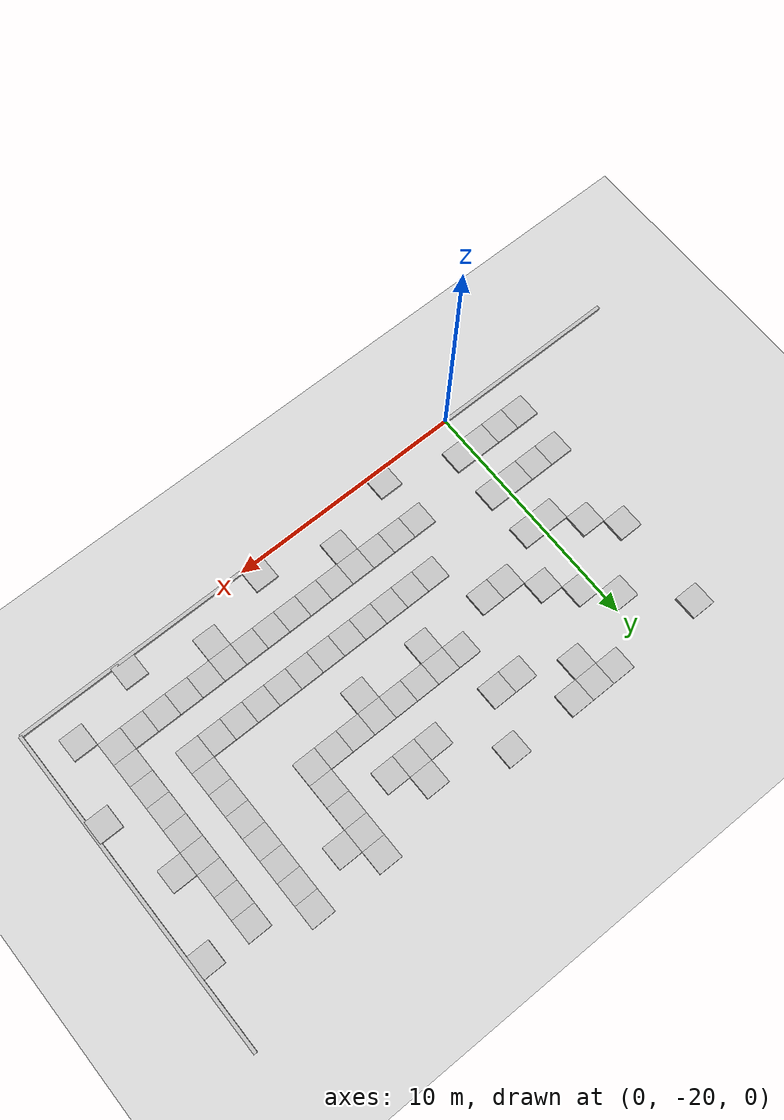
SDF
<sdf version="1.7">
 <world name="default">
  <model name="ground_plane">
   <static>1</static>
   <link name="link">
    <collision name="collision">
     <geometry><plane><normal>0 0 1</normal><size>100 100</size></plane></geometry>
     <surface>
      <contact><collide_bitmask>65535</collide_bitmask></contact>
      <friction><ode><mu>100</mu><mu2>50</mu2></ode></friction>
     </surface>
    </collision>
    <visual name="visual">
     <cast_shadows>0</cast_shadows>
     <geometry><plane><normal>0 0 1</normal><size>100 100</size></plane></geometry>
     <material>
      <script><uri>file://media/materials/scripts/gazebo.material</uri><name>Gazebo/Grey</name></script>
     </material>
    </visual>
   </link>
  </model>
  <model name="concrete_barrier_14m_0">
   <static>1</static>
   <link name="link">
    <collision name="concrete_barrier_14m_01">
     <pose>-0 0 0.3 0 -0 0</pose>
     <geometry><box><size>14 0.15 0.6</size></box></geometry>
    </collision>
    <visual name="concrete_barrier_14m_visual">
     <geometry><mesh><uri>model://concrete_barrier_14m/meshes/concrete_barrier_14m.dae</uri></mesh></geometry>
    </visual>
   </link>
   <pose>20 -13 0 0 -0 0</pose>
  </model>
  <model name="concrete_cube_1m_82">
   <static>1</static>
   <link name="link">
    <collision name="concrete_cube_1m">
     <pose>-0 0 0.3 0 -0 0</pose>
     <geometry><box><size>1 1 0.6</size></box></geometry>
    </collision>
    <visual name="concrete_cube_1m_visual">
     <geometry><mesh><uri>model://concrete_cube_1m/meshes/concrete_cube_1m.dae</uri></mesh></geometry>
    </visual>
   </link>
   <pose>2.5 -8.5 0 0 -0 0</pose>
  </model>
  <model name="concrete_cube_1m_83">
   <static>1</static>
   <link name="link">
    <collision name="concrete_cube_1m">
     <pose>-0 0 0.3 0 -0 0</pose>
     <geometry><box><size>1 1 0.6</size></box></geometry>
    </collision>
    <visual name="concrete_cube_1m_visual">
     <geometry><mesh><uri>model://concrete_cube_1m/meshes/concrete_cube_1m.dae</uri></mesh></geometry>
    </visual>
   </link>
   <pose>3.5 -8.5 0 0 -0 0</pose>
  </model>
  <model name="concrete_cube_1m_91">
   <static>1</static>
   <link name="link">
    <collision name="concrete_cube_1m">
     <pose>-0 0 0.3 0 -0 0</pose>
     <geometry><box><size>1 1 0.6</size></box></geometry>
    </collision>
    <visual name="concrete_cube_1m_visual">
     <geometry><mesh><uri>model://concrete_cube_1m/meshes/concrete_cube_1m.dae</uri></mesh></geometry>
    </visual>
   </link>
   <pose>-2.5 -8.5 0 0 -0 0</pose>
  </model>
  <model name="concrete_cube_1m_104">
   <static>1</static>
   <link name="link">
    <collision name="concrete_cube_1m">
     <pose>-0 0 0.3 0 -0 0</pose>
     <geometry><box><size>1 1 0.6</size></box></geometry>
    </collision>
    <visual name="concrete_cube_1m_visual">
     <geometry><mesh><uri>model://concrete_cube_1m/meshes/concrete_cube_1m.dae</uri></mesh></geometry>
    </visual>
   </link>
   <pose>6.5 -8.5 0 0 -0 0</pose>
  </model>
  <model name="concrete_cube_1m_106">
   <static>1</static>
   <link name="link">
    <collision name="concrete_cube_1m">
     <pose>-0 0 0.3 0 -0 0</pose>
     <geometry><box><size>1 1 0.6</size></box></geometry>
    </collision>
    <visual name="concrete_cube_1m_visual">
     <geometry><mesh><uri>model://concrete_cube_1m/meshes/concrete_cube_1m.dae</uri></mesh></geometry>
    </visual>
   </link>
   <pose>9.5 -9.5 0 0 -0 0</pose>
  </model>
  <model name="concrete_cube_1m_107">
   <static>1</static>
   <link name="link">
    <collision name="concrete_cube_1m">
     <pose>-0 0 0.3 0 -0 0</pose>
     <geometry><box><size>1 1 0.6</size></box></geometry>
    </collision>
    <visual name="concrete_cube_1m_visual">
     <geometry><mesh><uri>model://concrete_cube_1m/meshes/concrete_cube_1m.dae</uri></mesh></geometry>
    </visual>
   </link>
   <pose>0.5 -14.5 0 0 -0 0</pose>
  </model>
  <model name="concrete_cube_1m_108">
   <static>1</static>
   <link name="link">
    <collision name="concrete_cube_1m">
     <pose>-0 0 0.3 0 -0 0</pose>
     <geometry><box><size>1 1 0.6</size></box></geometry>
    </collision>
    <visual name="concrete_cube_1m_visual">
     <geometry><mesh><uri>model://concrete_cube_1m/meshes/concrete_cube_1m.dae</uri></mesh></geometry>
    </visual>
   </link>
   <pose>-0.5 -14.5 0 0 -0 0</pose>
  </model>
  <model name="concrete_cube_1m_192">
   <static>1</static>
   <link name="link">
    <collision name="concrete_cube_1m">
     <pose>-0 0 0.3 0 -0 0</pose>
     <geometry><box><size>1 1 0.6</size></box></geometry>
    </collision>
    <visual name="concrete_cube_1m_visual">
     <geometry><mesh><uri>model://concrete_cube_1m/meshes/concrete_cube_1m.dae</uri></mesh></geometry>
    </visual>
   </link>
   <pose>-1.5 -13.5 0 0 -0 0</pose>
  </model>
  <model name="concrete_cube_1m_193">
   <static>1</static>
   <link name="link">
    <collision name="concrete_cube_1m">
     <pose>-0 0 0.3 0 -0 0</pose>
     <geometry><box><size>1 1 0.6</size></box></geometry>
    </collision>
    <visual name="concrete_cube_1m_visual">
     <geometry><mesh><uri>model://concrete_cube_1m/meshes/concrete_cube_1m.dae</uri></mesh></geometry>
    </visual>
   </link>
   <pose>-2.5 -12.5 0 0 -0 0</pose>
  </model>
  <model name="concrete_cube_1m_207">
   <static>1</static>
   <link name="link">
    <collision name="concrete_cube_1m">
     <pose>-0 0 0.3 0 -0 0</pose>
     <geometry><box><size>1 1 0.6</size></box></geometry>
    </collision>
    <visual name="concrete_cube_1m_visual">
     <geometry><mesh><uri>model://concrete_cube_1m/meshes/concrete_cube_1m.dae</uri></mesh></geometry>
    </visual>
   </link>
   <pose>-0.5 -10.5 0 0 -0 0</pose>
  </model>
  <model name="concrete_cube_1m_211">
   <static>1</static>
   <link name="link">
    <collision name="concrete_cube_1m">
     <pose>-0 0 0.3 0 -0 0</pose>
     <geometry><box><size>1 1 0.6</size></box></geometry>
    </collision>
    <visual name="concrete_cube_1m_visual">
     <geometry><mesh><uri>model://concrete_cube_1m/meshes/concrete_cube_1m.dae</uri></mesh></geometry>
    </visual>
   </link>
   <pose>2.5 -9.5 0 0 -0 0</pose>
  </model>
  <model name="concrete_cube_1m_212">
   <static>1</static>
   <link name="link">
    <collision name="concrete_cube_1m">
     <pose>-0 0 0.3 0 -0 0</pose>
     <geometry><box><size>1 1 0.6</size></box></geometry>
    </collision>
    <visual name="concrete_cube_1m_visual">
     <geometry><mesh><uri>model://concrete_cube_1m/meshes/concrete_cube_1m.dae</uri></mesh></geometry>
    </visual>
   </link>
   <pose>1.5 -8.5 0 0 -0 0</pose>
  </model>
  <model name="concrete_cube_1m_213">
   <static>1</static>
   <link name="link">
    <collision name="concrete_cube_1m">
     <pose>-0 0 0.3 0 -0 0</pose>
     <geometry><box><size>1 1 0.6</size></box></geometry>
    </collision>
    <visual name="concrete_cube_1m_visual">
     <geometry><mesh><uri>model://concrete_cube_1m/meshes/concrete_cube_1m.dae</uri></mesh></geometry>
    </visual>
   </link>
   <pose>0.5 -11.5 0 0 -0 0</pose>
  </model>
  <model name="concrete_cube_1m_214">
   <static>1</static>
   <link name="link">
    <collision name="concrete_cube_1m">
     <pose>-0 0 0.3 0 -0 0</pose>
     <geometry><box><size>1 1 0.6</size></box></geometry>
    </collision>
    <visual name="concrete_cube_1m_visual">
     <geometry><mesh><uri>model://concrete_cube_1m/meshes/concrete_cube_1m.dae</uri></mesh></geometry>
    </visual>
   </link>
   <pose>1.5 -12.5 0 0 -0 0</pose>
  </model>
  <model name="concrete_cube_1m_215">
   <static>1</static>
   <link name="link">
    <collision name="concrete_cube_1m">
     <pose>-0 0 0.3 0 -0 0</pose>
     <geometry><box><size>1 1 0.6</size></box></geometry>
    </collision>
    <visual name="concrete_cube_1m_visual">
     <geometry><mesh><uri>model://concrete_cube_1m/meshes/concrete_cube_1m.dae</uri></mesh></geometry>
    </visual>
   </link>
   <pose>2.5 -13.5 0 0 -0 0</pose>
  </model>
  <model name="concrete_cube_1m_216">
   <static>1</static>
   <link name="link">
    <collision name="concrete_cube_1m">
     <pose>-0 0 0.3 0 -0 0</pose>
     <geometry><box><size>1 1 0.6</size></box></geometry>
    </collision>
    <visual name="concrete_cube_1m_visual">
     <geometry><mesh><uri>model://concrete_cube_1m/meshes/concrete_cube_1m.dae</uri></mesh></geometry>
    </visual>
   </link>
   <pose>9.5 -10.5 0 0 -0 0</pose>
  </model>
  <model name="concrete_cube_1m_217">
   <static>1</static>
   <link name="link">
    <collision name="concrete_cube_1m">
     <pose>-0 0 0.3 0 -0 0</pose>
     <geometry><box><size>1 1 0.6</size></box></geometry>
    </collision>
    <visual name="concrete_cube_1m_visual">
     <geometry><mesh><uri>model://concrete_cube_1m/meshes/concrete_cube_1m.dae</uri></mesh></geometry>
    </visual>
   </link>
   <pose>10.5 -10.5 0 0 -0 0</pose>
  </model>
  <model name="concrete_cube_1m_218">
   <static>1</static>
   <link name="link">
    <collision name="concrete_cube_1m">
     <pose>-0 0 0.3 0 -0 0</pose>
     <geometry><box><size>1 1 0.6</size></box></geometry>
    </collision>
    <visual name="concrete_cube_1m_visual">
     <geometry><mesh><uri>model://concrete_cube_1m/meshes/concrete_cube_1m.dae</uri></mesh></geometry>
    </visual>
   </link>
   <pose>8.5 -10.5 0 0 -0 0</pose>
  </model>
  <model name="concrete_cube_1m_219">
   <static>1</static>
   <link name="link">
    <collision name="concrete_cube_1m">
     <pose>-0 0 0.3 0 -0 0</pose>
     <geometry><box><size>1 1 0.6</size></box></geometry>
    </collision>
    <visual name="concrete_cube_1m_visual">
     <geometry><mesh><uri>model://concrete_cube_1m/meshes/concrete_cube_1m.dae</uri></mesh></geometry>
    </visual>
   </link>
   <pose>12.5 -12.5 0 0 -0 0</pose>
  </model>
  <model name="concrete_cube_1m_220">
   <static>1</static>
   <link name="link">
    <collision name="concrete_cube_1m">
     <pose>-0 0 0.3 0 -0 0</pose>
     <geometry><box><size>1 1 0.6</size></box></geometry>
    </collision>
    <visual name="concrete_cube_1m_visual">
     <geometry><mesh><uri>model://concrete_cube_1m/meshes/concrete_cube_1m.dae</uri></mesh></geometry>
    </visual>
   </link>
   <pose>11.5 -12.5 0 0 -0 0</pose>
  </model>
  <model name="concrete_cube_1m_221">
   <static>1</static>
   <link name="link">
    <collision name="concrete_cube_1m">
     <pose>-0 0 0.3 0 -0 0</pose>
     <geometry><box><size>1 1 0.6</size></box></geometry>
    </collision>
    <visual name="concrete_cube_1m_visual">
     <geometry><mesh><uri>model://concrete_cube_1m/meshes/concrete_cube_1m.dae</uri></mesh></geometry>
    </visual>
   </link>
   <pose>10.5 -12.5 0 0 -0 0</pose>
  </model>
  <model name="concrete_cube_1m_222">
   <static>1</static>
   <link name="link">
    <collision name="concrete_cube_1m">
     <pose>-0 0 0.3 0 -0 0</pose>
     <geometry><box><size>1 1 0.6</size></box></geometry>
    </collision>
    <visual name="concrete_cube_1m_visual">
     <geometry><mesh><uri>model://concrete_cube_1m/meshes/concrete_cube_1m.dae</uri></mesh></geometry>
    </visual>
   </link>
   <pose>9.5 -12.5 0 0 -0 0</pose>
  </model>
  <model name="concrete_cube_1m_223">
   <static>1</static>
   <link name="link">
    <collision name="concrete_cube_1m">
     <pose>-0 0 0.3 0 -0 0</pose>
     <geometry><box><size>1 1 0.6</size></box></geometry>
    </collision>
    <visual name="concrete_cube_1m_visual">
     <geometry><mesh><uri>model://concrete_cube_1m/meshes/concrete_cube_1m.dae</uri></mesh></geometry>
    </visual>
   </link>
   <pose>8.5 -12.5 0 0 -0 0</pose>
  </model>
  <model name="concrete_cube_1m_224">
   <static>1</static>
   <link name="link">
    <collision name="concrete_cube_1m">
     <pose>-0 0 0.3 0 -0 0</pose>
     <geometry><box><size>1 1 0.6</size></box></geometry>
    </collision>
    <visual name="concrete_cube_1m_visual">
     <geometry><mesh><uri>model://concrete_cube_1m/meshes/concrete_cube_1m.dae</uri></mesh></geometry>
    </visual>
   </link>
   <pose>7.5 -12.5 0 0 -0 0</pose>
  </model>
  <model name="concrete_cube_1m_225">
   <static>1</static>
   <link name="link">
    <collision name="concrete_cube_1m">
     <pose>-0 0 0.3 0 -0 0</pose>
     <geometry><box><size>1 1 0.6</size></box></geometry>
    </collision>
    <visual name="concrete_cube_1m_visual">
     <geometry><mesh><uri>model://concrete_cube_1m/meshes/concrete_cube_1m.dae</uri></mesh></geometry>
    </visual>
   </link>
   <pose>6.5 -12.5 0 0 -0 0</pose>
  </model>
  <model name="concrete_cube_1m_226">
   <static>1</static>
   <link name="link">
    <collision name="concrete_cube_1m">
     <pose>-0 0 0.3 0 -0 0</pose>
     <geometry><box><size>1 1 0.6</size></box></geometry>
    </collision>
    <visual name="concrete_cube_1m_visual">
     <geometry><mesh><uri>model://concrete_cube_1m/meshes/concrete_cube_1m.dae</uri></mesh></geometry>
    </visual>
   </link>
   <pose>5.5 -12.5 0 0 -0 0</pose>
  </model>
  <model name="concrete_cube_1m_227">
   <static>1</static>
   <link name="link">
    <collision name="concrete_cube_1m">
     <pose>-0 0 0.3 0 -0 0</pose>
     <geometry><box><size>1 1 0.6</size></box></geometry>
    </collision>
    <visual name="concrete_cube_1m_visual">
     <geometry><mesh><uri>model://concrete_cube_1m/meshes/concrete_cube_1m.dae</uri></mesh></geometry>
    </visual>
   </link>
   <pose>12.5 -11.5 0 0 -0 0</pose>
  </model>
  <model name="concrete_cube_1m_228">
   <static>1</static>
   <link name="link">
    <collision name="concrete_cube_1m">
     <pose>-0 0 0.3 0 -0 0</pose>
     <geometry><box><size>1 1 0.6</size></box></geometry>
    </collision>
    <visual name="concrete_cube_1m_visual">
     <geometry><mesh><uri>model://concrete_cube_1m/meshes/concrete_cube_1m.dae</uri></mesh></geometry>
    </visual>
   </link>
   <pose>12.5 -10.5 0 0 -0 0</pose>
  </model>
  <model name="concrete_cube_1m_229">
   <static>1</static>
   <link name="link">
    <collision name="concrete_cube_1m">
     <pose>-0 0 0.3 0 -0 0</pose>
     <geometry><box><size>1 1 0.6</size></box></geometry>
    </collision>
    <visual name="concrete_cube_1m_visual">
     <geometry><mesh><uri>model://concrete_cube_1m/meshes/concrete_cube_1m.dae</uri></mesh></geometry>
    </visual>
   </link>
   <pose>12.5 -9.5 0 0 -0 0</pose>
  </model>
  <model name="concrete_cube_1m_230">
   <static>1</static>
   <link name="link">
    <collision name="concrete_cube_1m">
     <pose>-0 0 0.3 0 -0 0</pose>
     <geometry><box><size>1 1 0.6</size></box></geometry>
    </collision>
    <visual name="concrete_cube_1m_visual">
     <geometry><mesh><uri>model://concrete_cube_1m/meshes/concrete_cube_1m.dae</uri></mesh></geometry>
    </visual>
   </link>
   <pose>12.5 -8.5 0 0 -0 0</pose>
  </model>
  <model name="concrete_cube_1m_239">
   <static>1</static>
   <link name="link">
    <collision name="concrete_cube_1m">
     <pose>-0 0 0.3 0 -0 0</pose>
     <geometry><box><size>1 1 0.6</size></box></geometry>
    </collision>
    <visual name="concrete_cube_1m_visual">
     <geometry><mesh><uri>model://concrete_cube_1m/meshes/concrete_cube_1m.dae</uri></mesh></geometry>
    </visual>
   </link>
   <pose>13.5 -9.5 0 0 -0 0</pose>
  </model>
  <model name="concrete_cube_1m_241">
   <static>1</static>
   <link name="link">
    <collision name="concrete_cube_1m">
     <pose>-0 0 0.3 0 -0 0</pose>
     <geometry><box><size>1 1 0.6</size></box></geometry>
    </collision>
    <visual name="concrete_cube_1m_visual">
     <geometry><mesh><uri>model://concrete_cube_1m/meshes/concrete_cube_1m.dae</uri></mesh></geometry>
    </visual>
   </link>
   <pose>9.5 -13.5 0 0 -0 0</pose>
  </model>
  <model name="concrete_cube_1m_242">
   <static>1</static>
   <link name="link">
    <collision name="concrete_cube_1m">
     <pose>-0 0 0.3 0 -0 0</pose>
     <geometry><box><size>1 1 0.6</size></box></geometry>
    </collision>
    <visual name="concrete_cube_1m_visual">
     <geometry><mesh><uri>model://concrete_cube_1m/meshes/concrete_cube_1m.dae</uri></mesh></geometry>
    </visual>
   </link>
   <pose>6.5 -13.5 0 0 -0 0</pose>
  </model>
  <model name="concrete_cube_1m_243">
   <static>1</static>
   <link name="link">
    <collision name="concrete_cube_1m">
     <pose>-0 0 0.3 0 -0 0</pose>
     <geometry><box><size>1 1 0.6</size></box></geometry>
    </collision>
    <visual name="concrete_cube_1m_visual">
     <geometry><mesh><uri>model://concrete_cube_1m/meshes/concrete_cube_1m.dae</uri></mesh></geometry>
    </visual>
   </link>
   <pose>3.5 -13.5 0 0 -0 0</pose>
  </model>
  <model name="concrete_cube_1m_244">
   <static>1</static>
   <link name="link">
    <collision name="concrete_cube_1m">
     <pose>-0 0 0.3 0 -0 0</pose>
     <geometry><box><size>1 1 0.6</size></box></geometry>
    </collision>
    <visual name="concrete_cube_1m_visual">
     <geometry><mesh><uri>model://concrete_cube_1m/meshes/concrete_cube_1m.dae</uri></mesh></geometry>
    </visual>
   </link>
   <pose>5.5 -10.5 0 0 -0 0</pose>
  </model>
  <model name="concrete_cube_1m_245">
   <static>1</static>
   <link name="link">
    <collision name="concrete_cube_1m">
     <pose>-0 0 0.3 0 -0 0</pose>
     <geometry><box><size>1 1 0.6</size></box></geometry>
    </collision>
    <visual name="concrete_cube_1m_visual">
     <geometry><mesh><uri>model://concrete_cube_1m/meshes/concrete_cube_1m.dae</uri></mesh></geometry>
    </visual>
   </link>
   <pose>4.5 -10.5 0 0 -0 0</pose>
  </model>
  <model name="concrete_barrier_14m_4_clone_1">
   <static>1</static>
   <link name="link">
    <collision name="concrete_barrier_14m_01">
     <pose>-0 0 0.3 0 -0 0</pose>
     <geometry><box><size>14 0.15 0.6</size></box></geometry>
    </collision>
    <visual name="concrete_barrier_14m_visual">
     <geometry><mesh><uri>model://concrete_barrier_14m/meshes/concrete_barrier_14m.dae</uri></mesh></geometry>
    </visual>
   </link>
   <pose>13 -20 0 0 0 -1.56953</pose>
  </model>
  <model name="concrete_barrier_14m_4_clone_2">
   <static>1</static>
   <link name="link">
    <collision name="concrete_barrier_14m_01">
     <pose>-0 0 0.3 0 -0 0</pose>
     <geometry><box><size>14 0.15 0.6</size></box></geometry>
    </collision>
    <visual name="concrete_barrier_14m_visual">
     <geometry><mesh><uri>model://concrete_barrier_14m/meshes/concrete_barrier_14m.dae</uri></mesh></geometry>
    </visual>
   </link>
   <pose>-1 -20 0 0 0 -1.56953</pose>
  </model>
  <model name="concrete_cube_1m_393">
   <static>1</static>
   <link name="link">
    <collision name="concrete_cube_1m">
     <pose>-0 0 0.3 0 -0 0</pose>
     <geometry><box><size>1 1 0.6</size></box></geometry>
    </collision>
    <visual name="concrete_cube_1m_visual">
     <geometry><mesh><uri>model://concrete_cube_1m/meshes/concrete_cube_1m.dae</uri></mesh></geometry>
    </visual>
   </link>
   <pose>0.5 -18.5 0 0 -0 0</pose>
  </model>
  <model name="concrete_cube_1m_401">
   <static>1</static>
   <link name="link">
    <collision name="concrete_cube_1m">
     <pose>-0 0 0.3 0 -0 0</pose>
     <geometry><box><size>1 1 0.6</size></box></geometry>
    </collision>
    <visual name="concrete_cube_1m_visual">
     <geometry><mesh><uri>model://concrete_cube_1m/meshes/concrete_cube_1m.dae</uri></mesh></geometry>
    </visual>
   </link>
   <pose>-2.5 -18.5 0 0 -0 0</pose>
  </model>
  <model name="concrete_cube_1m_402">
   <static>1</static>
   <link name="link">
    <collision name="concrete_cube_1m">
     <pose>-0 0 0.3 0 -0 0</pose>
     <geometry><box><size>1 1 0.6</size></box></geometry>
    </collision>
    <visual name="concrete_cube_1m_visual">
     <geometry><mesh><uri>model://concrete_cube_1m/meshes/concrete_cube_1m.dae</uri></mesh></geometry>
    </visual>
   </link>
   <pose>-1.5 -18.5 0 0 -0 0</pose>
  </model>
  <model name="concrete_cube_1m_408">
   <static>1</static>
   <link name="link">
    <collision name="concrete_cube_1m">
     <pose>-0 0 0.3 0 -0 0</pose>
     <geometry><box><size>1 1 0.6</size></box></geometry>
    </collision>
    <visual name="concrete_cube_1m_visual">
     <geometry><mesh><uri>model://concrete_cube_1m/meshes/concrete_cube_1m.dae</uri></mesh></geometry>
    </visual>
   </link>
   <pose>-2.5 -16.5 0 0 -0 0</pose>
  </model>
  <model name="concrete_cube_1m_409">
   <static>1</static>
   <link name="link">
    <collision name="concrete_cube_1m">
     <pose>-0 0 0.3 0 -0 0</pose>
     <geometry><box><size>1 1 0.6</size></box></geometry>
    </collision>
    <visual name="concrete_cube_1m_visual">
     <geometry><mesh><uri>model://concrete_cube_1m/meshes/concrete_cube_1m.dae</uri></mesh></geometry>
    </visual>
   </link>
   <pose>-1.5 -16.5 0 0 -0 0</pose>
  </model>
  <model name="concrete_cube_1m_410">
   <static>1</static>
   <link name="link">
    <collision name="concrete_cube_1m">
     <pose>-0 0 0.3 0 -0 0</pose>
     <geometry><box><size>1 1 0.6</size></box></geometry>
    </collision>
    <visual name="concrete_cube_1m_visual">
     <geometry><mesh><uri>model://concrete_cube_1m/meshes/concrete_cube_1m.dae</uri></mesh></geometry>
    </visual>
   </link>
   <pose>-0.5 -16.5 0 0 -0 0</pose>
  </model>
  <model name="concrete_cube_1m_411">
   <static>1</static>
   <link name="link">
    <collision name="concrete_cube_1m">
     <pose>-0 0 0.3 0 -0 0</pose>
     <geometry><box><size>1 1 0.6</size></box></geometry>
    </collision>
    <visual name="concrete_cube_1m_visual">
     <geometry><mesh><uri>model://concrete_cube_1m/meshes/concrete_cube_1m.dae</uri></mesh></geometry>
    </visual>
   </link>
   <pose>0.5 -16.5 0 0 -0 0</pose>
  </model>
  <model name="concrete_cube_1m_412">
   <static>1</static>
   <link name="link">
    <collision name="concrete_cube_1m">
     <pose>-0 0 0.3 0 -0 0</pose>
     <geometry><box><size>1 1 0.6</size></box></geometry>
    </collision>
    <visual name="concrete_cube_1m_visual">
     <geometry><mesh><uri>model://concrete_cube_1m/meshes/concrete_cube_1m.dae</uri></mesh></geometry>
    </visual>
   </link>
   <pose>-0.5 -18.5 0 0 -0 0</pose>
  </model>
  <model name="concrete_cube_1m_413">
   <static>1</static>
   <link name="link">
    <collision name="concrete_cube_1m">
     <pose>-0 0 0.3 0 -0 0</pose>
     <geometry><box><size>1 1 0.6</size></box></geometry>
    </collision>
    <visual name="concrete_cube_1m_visual">
     <geometry><mesh><uri>model://concrete_cube_1m/meshes/concrete_cube_1m.dae</uri></mesh></geometry>
    </visual>
   </link>
   <pose>3.5 -17.5 0 0 -0 0</pose>
  </model>
  <model name="concrete_cube_1m_414">
   <static>1</static>
   <link name="link">
    <collision name="concrete_cube_1m">
     <pose>-0 0 0.3 0 -0 0</pose>
     <geometry><box><size>1 1 0.6</size></box></geometry>
    </collision>
    <visual name="concrete_cube_1m_visual">
     <geometry><mesh><uri>model://concrete_cube_1m/meshes/concrete_cube_1m.dae</uri></mesh></geometry>
    </visual>
   </link>
   <pose>4.5 -17.5 0 0 -0 0</pose>
  </model>
  <model name="concrete_cube_1m_415">
   <static>1</static>
   <link name="link">
    <collision name="concrete_cube_1m">
     <pose>-0 0 0.3 0 -0 0</pose>
     <geometry><box><size>1 1 0.6</size></box></geometry>
    </collision>
    <visual name="concrete_cube_1m_visual">
     <geometry><mesh><uri>model://concrete_cube_1m/meshes/concrete_cube_1m.dae</uri></mesh></geometry>
    </visual>
   </link>
   <pose>5.5 -17.5 0 0 -0 0</pose>
  </model>
  <model name="concrete_cube_1m_416">
   <static>1</static>
   <link name="link">
    <collision name="concrete_cube_1m">
     <pose>-0 0 0.3 0 -0 0</pose>
     <geometry><box><size>1 1 0.6</size></box></geometry>
    </collision>
    <visual name="concrete_cube_1m_visual">
     <geometry><mesh><uri>model://concrete_cube_1m/meshes/concrete_cube_1m.dae</uri></mesh></geometry>
    </visual>
   </link>
   <pose>6.5 -17.5 0 0 -0 0</pose>
  </model>
  <model name="concrete_cube_1m_417">
   <static>1</static>
   <link name="link">
    <collision name="concrete_cube_1m">
     <pose>-0 0 0.3 0 -0 0</pose>
     <geometry><box><size>1 1 0.6</size></box></geometry>
    </collision>
    <visual name="concrete_cube_1m_visual">
     <geometry><mesh><uri>model://concrete_cube_1m/meshes/concrete_cube_1m.dae</uri></mesh></geometry>
    </visual>
   </link>
   <pose>7.5 -17.5 0 0 -0 0</pose>
  </model>
  <model name="concrete_cube_1m_418">
   <static>1</static>
   <link name="link">
    <collision name="concrete_cube_1m">
     <pose>-0 0 0.3 0 -0 0</pose>
     <geometry><box><size>1 1 0.6</size></box></geometry>
    </collision>
    <visual name="concrete_cube_1m_visual">
     <geometry><mesh><uri>model://concrete_cube_1m/meshes/concrete_cube_1m.dae</uri></mesh></geometry>
    </visual>
   </link>
   <pose>8.5 -17.5 0 0 -0 0</pose>
  </model>
  <model name="concrete_cube_1m_419">
   <static>1</static>
   <link name="link">
    <collision name="concrete_cube_1m">
     <pose>-0 0 0.3 0 -0 0</pose>
     <geometry><box><size>1 1 0.6</size></box></geometry>
    </collision>
    <visual name="concrete_cube_1m_visual">
     <geometry><mesh><uri>model://concrete_cube_1m/meshes/concrete_cube_1m.dae</uri></mesh></geometry>
    </visual>
   </link>
   <pose>9.5 -17.5 0 0 -0 0</pose>
  </model>
  <model name="concrete_cube_1m_420">
   <static>1</static>
   <link name="link">
    <collision name="concrete_cube_1m">
     <pose>-0 0 0.3 0 -0 0</pose>
     <geometry><box><size>1 1 0.6</size></box></geometry>
    </collision>
    <visual name="concrete_cube_1m_visual">
     <geometry><mesh><uri>model://concrete_cube_1m/meshes/concrete_cube_1m.dae</uri></mesh></geometry>
    </visual>
   </link>
   <pose>10.5 -17.5 0 0 -0 0</pose>
  </model>
  <model name="concrete_cube_1m_421">
   <static>1</static>
   <link name="link">
    <collision name="concrete_cube_1m">
     <pose>-0 0 0.3 0 -0 0</pose>
     <geometry><box><size>1 1 0.6</size></box></geometry>
    </collision>
    <visual name="concrete_cube_1m_visual">
     <geometry><mesh><uri>model://concrete_cube_1m/meshes/concrete_cube_1m.dae</uri></mesh></geometry>
    </visual>
   </link>
   <pose>11.5 -17.5 0 0 -0 0</pose>
  </model>
  <model name="concrete_cube_1m_422">
   <static>1</static>
   <link name="link">
    <collision name="concrete_cube_1m">
     <pose>-0 0 0.3 0 -0 0</pose>
     <geometry><box><size>1 1 0.6</size></box></geometry>
    </collision>
    <visual name="concrete_cube_1m_visual">
     <geometry><mesh><uri>model://concrete_cube_1m/meshes/concrete_cube_1m.dae</uri></mesh></geometry>
    </visual>
   </link>
   <pose>12.5 -17.5 0 0 -0 0</pose>
  </model>
  <model name="concrete_cube_1m_423">
   <static>1</static>
   <link name="link">
    <collision name="concrete_cube_1m">
     <pose>-0 0 0.3 0 -0 0</pose>
     <geometry><box><size>1 1 0.6</size></box></geometry>
    </collision>
    <visual name="concrete_cube_1m_visual">
     <geometry><mesh><uri>model://concrete_cube_1m/meshes/concrete_cube_1m.dae</uri></mesh></geometry>
    </visual>
   </link>
   <pose>13.5 -17.5 0 0 -0 0</pose>
  </model>
  <model name="concrete_cube_1m_424">
   <static>1</static>
   <link name="link">
    <collision name="concrete_cube_1m">
     <pose>-0 0 0.3 0 -0 0</pose>
     <geometry><box><size>1 1 0.6</size></box></geometry>
    </collision>
    <visual name="concrete_cube_1m_visual">
     <geometry><mesh><uri>model://concrete_cube_1m/meshes/concrete_cube_1m.dae</uri></mesh></geometry>
    </visual>
   </link>
   <pose>14.5 -17.5 0 0 -0 0</pose>
  </model>
  <model name="concrete_cube_1m_425">
   <static>1</static>
   <link name="link">
    <collision name="concrete_cube_1m">
     <pose>-0 0 0.3 0 -0 0</pose>
     <geometry><box><size>1 1 0.6</size></box></geometry>
    </collision>
    <visual name="concrete_cube_1m_visual">
     <geometry><mesh><uri>model://concrete_cube_1m/meshes/concrete_cube_1m.dae</uri></mesh></geometry>
    </visual>
   </link>
   <pose>15.5 -17.5 0 0 -0 0</pose>
  </model>
  <model name="concrete_cube_1m_426">
   <static>1</static>
   <link name="link">
    <collision name="concrete_cube_1m">
     <pose>-0 0 0.3 0 -0 0</pose>
     <geometry><box><size>1 1 0.6</size></box></geometry>
    </collision>
    <visual name="concrete_cube_1m_visual">
     <geometry><mesh><uri>model://concrete_cube_1m/meshes/concrete_cube_1m.dae</uri></mesh></geometry>
    </visual>
   </link>
   <pose>16.5 -17.5 0 0 -0 0</pose>
  </model>
  <model name="concrete_cube_1m_427">
   <static>1</static>
   <link name="link">
    <collision name="concrete_cube_1m">
     <pose>-0 0 0.3 0 -0 0</pose>
     <geometry><box><size>1 1 0.6</size></box></geometry>
    </collision>
    <visual name="concrete_cube_1m_visual">
     <geometry><mesh><uri>model://concrete_cube_1m/meshes/concrete_cube_1m.dae</uri></mesh></geometry>
    </visual>
   </link>
   <pose>17.5 -17.5 0 0 -0 0</pose>
  </model>
  <model name="concrete_cube_1m_428">
   <static>1</static>
   <link name="link">
    <collision name="concrete_cube_1m">
     <pose>-0 0 0.3 0 -0 0</pose>
     <geometry><box><size>1 1 0.6</size></box></geometry>
    </collision>
    <visual name="concrete_cube_1m_visual">
     <geometry><mesh><uri>model://concrete_cube_1m/meshes/concrete_cube_1m.dae</uri></mesh></geometry>
    </visual>
   </link>
   <pose>18.5 -18.5 0 0 -0 0</pose>
  </model>
  <model name="concrete_cube_1m_429">
   <static>1</static>
   <link name="link">
    <collision name="concrete_cube_1m">
     <pose>-0 0 0.3 0 -0 0</pose>
     <geometry><box><size>1 1 0.6</size></box></geometry>
    </collision>
    <visual name="concrete_cube_1m_visual">
     <geometry><mesh><uri>model://concrete_cube_1m/meshes/concrete_cube_1m.dae</uri></mesh></geometry>
    </visual>
   </link>
   <pose>17.5 -16.5 0 0 -0 0</pose>
  </model>
  <model name="concrete_cube_1m_430">
   <static>1</static>
   <link name="link">
    <collision name="concrete_cube_1m">
     <pose>-0 0 0.3 0 -0 0</pose>
     <geometry><box><size>1 1 0.6</size></box></geometry>
    </collision>
    <visual name="concrete_cube_1m_visual">
     <geometry><mesh><uri>model://concrete_cube_1m/meshes/concrete_cube_1m.dae</uri></mesh></geometry>
    </visual>
   </link>
   <pose>17.5 -15.5 0 0 -0 0</pose>
  </model>
  <model name="concrete_cube_1m_431">
   <static>1</static>
   <link name="link">
    <collision name="concrete_cube_1m">
     <pose>-0 0 0.3 0 -0 0</pose>
     <geometry><box><size>1 1 0.6</size></box></geometry>
    </collision>
    <visual name="concrete_cube_1m_visual">
     <geometry><mesh><uri>model://concrete_cube_1m/meshes/concrete_cube_1m.dae</uri></mesh></geometry>
    </visual>
   </link>
   <pose>17.5 -14.5 0 0 -0 0</pose>
  </model>
  <model name="concrete_cube_1m_432">
   <static>1</static>
   <link name="link">
    <collision name="concrete_cube_1m">
     <pose>-0 0 0.3 0 -0 0</pose>
     <geometry><box><size>1 1 0.6</size></box></geometry>
    </collision>
    <visual name="concrete_cube_1m_visual">
     <geometry><mesh><uri>model://concrete_cube_1m/meshes/concrete_cube_1m.dae</uri></mesh></geometry>
    </visual>
   </link>
   <pose>17.5 -13.5 0 0 -0 0</pose>
  </model>
  <model name="concrete_cube_1m_433">
   <static>1</static>
   <link name="link">
    <collision name="concrete_cube_1m">
     <pose>-0 0 0.3 0 -0 0</pose>
     <geometry><box><size>1 1 0.6</size></box></geometry>
    </collision>
    <visual name="concrete_cube_1m_visual">
     <geometry><mesh><uri>model://concrete_cube_1m/meshes/concrete_cube_1m.dae</uri></mesh></geometry>
    </visual>
   </link>
   <pose>17.5 -12.5 0 0 -0 0</pose>
  </model>
  <model name="concrete_cube_1m_434">
   <static>1</static>
   <link name="link">
    <collision name="concrete_cube_1m">
     <pose>-0 0 0.3 0 -0 0</pose>
     <geometry><box><size>1 1 0.6</size></box></geometry>
    </collision>
    <visual name="concrete_cube_1m_visual">
     <geometry><mesh><uri>model://concrete_cube_1m/meshes/concrete_cube_1m.dae</uri></mesh></geometry>
    </visual>
   </link>
   <pose>17.5 -11.5 0 0 -0 0</pose>
  </model>
  <model name="concrete_cube_1m_435">
   <static>1</static>
   <link name="link">
    <collision name="concrete_cube_1m">
     <pose>-0 0 0.3 0 -0 0</pose>
     <geometry><box><size>1 1 0.6</size></box></geometry>
    </collision>
    <visual name="concrete_cube_1m_visual">
     <geometry><mesh><uri>model://concrete_cube_1m/meshes/concrete_cube_1m.dae</uri></mesh></geometry>
    </visual>
   </link>
   <pose>17.5 -10.5 0 0 -0 0</pose>
  </model>
  <model name="concrete_cube_1m_436">
   <static>1</static>
   <link name="link">
    <collision name="concrete_cube_1m">
     <pose>-0 0 0.3 0 -0 0</pose>
     <geometry><box><size>1 1 0.6</size></box></geometry>
    </collision>
    <visual name="concrete_cube_1m_visual">
     <geometry><mesh><uri>model://concrete_cube_1m/meshes/concrete_cube_1m.dae</uri></mesh></geometry>
    </visual>
   </link>
   <pose>17.5 -9.5 0 0 -0 0</pose>
  </model>
  <model name="concrete_cube_1m_444">
   <static>1</static>
   <link name="link">
    <collision name="concrete_cube_1m">
     <pose>-0 0 0.3 0 -0 0</pose>
     <geometry><box><size>1 1 0.6</size></box></geometry>
    </collision>
    <visual name="concrete_cube_1m_visual">
     <geometry><mesh><uri>model://concrete_cube_1m/meshes/concrete_cube_1m.dae</uri></mesh></geometry>
    </visual>
   </link>
   <pose>4.5 -15.5 0 0 -0 0</pose>
  </model>
  <model name="concrete_cube_1m_445">
   <static>1</static>
   <link name="link">
    <collision name="concrete_cube_1m">
     <pose>-0 0 0.3 0 -0 0</pose>
     <geometry><box><size>1 1 0.6</size></box></geometry>
    </collision>
    <visual name="concrete_cube_1m_visual">
     <geometry><mesh><uri>model://concrete_cube_1m/meshes/concrete_cube_1m.dae</uri></mesh></geometry>
    </visual>
   </link>
   <pose>5.5 -15.5 0 0 -0 0</pose>
  </model>
  <model name="concrete_cube_1m_446">
   <static>1</static>
   <link name="link">
    <collision name="concrete_cube_1m">
     <pose>-0 0 0.3 0 -0 0</pose>
     <geometry><box><size>1 1 0.6</size></box></geometry>
    </collision>
    <visual name="concrete_cube_1m_visual">
     <geometry><mesh><uri>model://concrete_cube_1m/meshes/concrete_cube_1m.dae</uri></mesh></geometry>
    </visual>
   </link>
   <pose>6.5 -15.5 0 0 -0 0</pose>
  </model>
  <model name="concrete_cube_1m_447">
   <static>1</static>
   <link name="link">
    <collision name="concrete_cube_1m">
     <pose>-0 0 0.3 0 -0 0</pose>
     <geometry><box><size>1 1 0.6</size></box></geometry>
    </collision>
    <visual name="concrete_cube_1m_visual">
     <geometry><mesh><uri>model://concrete_cube_1m/meshes/concrete_cube_1m.dae</uri></mesh></geometry>
    </visual>
   </link>
   <pose>7.5 -15.5 0 0 -0 0</pose>
  </model>
  <model name="concrete_cube_1m_448">
   <static>1</static>
   <link name="link">
    <collision name="concrete_cube_1m">
     <pose>-0 0 0.3 0 -0 0</pose>
     <geometry><box><size>1 1 0.6</size></box></geometry>
    </collision>
    <visual name="concrete_cube_1m_visual">
     <geometry><mesh><uri>model://concrete_cube_1m/meshes/concrete_cube_1m.dae</uri></mesh></geometry>
    </visual>
   </link>
   <pose>8.5 -15.5 0 0 -0 0</pose>
  </model>
  <model name="concrete_cube_1m_449">
   <static>1</static>
   <link name="link">
    <collision name="concrete_cube_1m">
     <pose>-0 0 0.3 0 -0 0</pose>
     <geometry><box><size>1 1 0.6</size></box></geometry>
    </collision>
    <visual name="concrete_cube_1m_visual">
     <geometry><mesh><uri>model://concrete_cube_1m/meshes/concrete_cube_1m.dae</uri></mesh></geometry>
    </visual>
   </link>
   <pose>9.5 -15.5 0 0 -0 0</pose>
  </model>
  <model name="concrete_cube_1m_450">
   <static>1</static>
   <link name="link">
    <collision name="concrete_cube_1m">
     <pose>-0 0 0.3 0 -0 0</pose>
     <geometry><box><size>1 1 0.6</size></box></geometry>
    </collision>
    <visual name="concrete_cube_1m_visual">
     <geometry><mesh><uri>model://concrete_cube_1m/meshes/concrete_cube_1m.dae</uri></mesh></geometry>
    </visual>
   </link>
   <pose>10.5 -15.5 0 0 -0 0</pose>
  </model>
  <model name="concrete_cube_1m_451">
   <static>1</static>
   <link name="link">
    <collision name="concrete_cube_1m">
     <pose>-0 0 0.3 0 -0 0</pose>
     <geometry><box><size>1 1 0.6</size></box></geometry>
    </collision>
    <visual name="concrete_cube_1m_visual">
     <geometry><mesh><uri>model://concrete_cube_1m/meshes/concrete_cube_1m.dae</uri></mesh></geometry>
    </visual>
   </link>
   <pose>11.5 -15.5 0 0 -0 0</pose>
  </model>
  <model name="concrete_cube_1m_452">
   <static>1</static>
   <link name="link">
    <collision name="concrete_cube_1m">
     <pose>-0 0 0.3 0 -0 0</pose>
     <geometry><box><size>1 1 0.6</size></box></geometry>
    </collision>
    <visual name="concrete_cube_1m_visual">
     <geometry><mesh><uri>model://concrete_cube_1m/meshes/concrete_cube_1m.dae</uri></mesh></geometry>
    </visual>
   </link>
   <pose>12.5 -15.5 0 0 -0 0</pose>
  </model>
  <model name="concrete_cube_1m_453">
   <static>1</static>
   <link name="link">
    <collision name="concrete_cube_1m">
     <pose>-0 0 0.3 0 -0 0</pose>
     <geometry><box><size>1 1 0.6</size></box></geometry>
    </collision>
    <visual name="concrete_cube_1m_visual">
     <geometry><mesh><uri>model://concrete_cube_1m/meshes/concrete_cube_1m.dae</uri></mesh></geometry>
    </visual>
   </link>
   <pose>13.5 -15.5 0 0 -0 0</pose>
  </model>
  <model name="concrete_cube_1m_454">
   <static>1</static>
   <link name="link">
    <collision name="concrete_cube_1m">
     <pose>-0 0 0.3 0 -0 0</pose>
     <geometry><box><size>1 1 0.6</size></box></geometry>
    </collision>
    <visual name="concrete_cube_1m_visual">
     <geometry><mesh><uri>model://concrete_cube_1m/meshes/concrete_cube_1m.dae</uri></mesh></geometry>
    </visual>
   </link>
   <pose>14.5 -15.5 0 0 -0 0</pose>
  </model>
  <model name="concrete_cube_1m_237">
   <static>1</static>
   <link name="link">
    <collision name="concrete_cube_1m">
     <pose>-0 0 0.3 0 -0 0</pose>
     <geometry><box><size>1 1 0.6</size></box></geometry>
    </collision>
    <visual name="concrete_cube_1m_visual">
     <geometry><mesh><uri>model://concrete_cube_1m/meshes/concrete_cube_1m.dae</uri></mesh></geometry>
    </visual>
   </link>
   <pose>15.5 -15.5 0 0 -0 0</pose>
  </model>
  <model name="concrete_cube_1m_455">
   <static>1</static>
   <link name="link">
    <collision name="concrete_cube_1m">
     <pose>-0 0 0.3 0 -0 0</pose>
     <geometry><box><size>1 1 0.6</size></box></geometry>
    </collision>
    <visual name="concrete_cube_1m_visual">
     <geometry><mesh><uri>model://concrete_cube_1m/meshes/concrete_cube_1m.dae</uri></mesh></geometry>
    </visual>
   </link>
   <pose>15.5 -13.5 0 0 -0 0</pose>
  </model>
  <model name="concrete_cube_1m_456">
   <static>1</static>
   <link name="link">
    <collision name="concrete_cube_1m">
     <pose>-0 0 0.3 0 -0 0</pose>
     <geometry><box><size>1 1 0.6</size></box></geometry>
    </collision>
    <visual name="concrete_cube_1m_visual">
     <geometry><mesh><uri>model://concrete_cube_1m/meshes/concrete_cube_1m.dae</uri></mesh></geometry>
    </visual>
   </link>
   <pose>15.5 -14.5 0 0 -0 0</pose>
  </model>
  <model name="concrete_cube_1m_457">
   <static>1</static>
   <link name="link">
    <collision name="concrete_cube_1m">
     <pose>-0 0 0.3 0 -0 0</pose>
     <geometry><box><size>1 1 0.6</size></box></geometry>
    </collision>
    <visual name="concrete_cube_1m_visual">
     <geometry><mesh><uri>model://concrete_cube_1m/meshes/concrete_cube_1m.dae</uri></mesh></geometry>
    </visual>
   </link>
   <pose>15.5 -12.5 0 0 -0 0</pose>
  </model>
  <model name="concrete_cube_1m_458">
   <static>1</static>
   <link name="link">
    <collision name="concrete_cube_1m">
     <pose>-0 0 0.3 0 -0 0</pose>
     <geometry><box><size>1 1 0.6</size></box></geometry>
    </collision>
    <visual name="concrete_cube_1m_visual">
     <geometry><mesh><uri>model://concrete_cube_1m/meshes/concrete_cube_1m.dae</uri></mesh></geometry>
    </visual>
   </link>
   <pose>15.5 -11.5 0 0 -0 0</pose>
  </model>
  <model name="concrete_cube_1m_459">
   <static>1</static>
   <link name="link">
    <collision name="concrete_cube_1m">
     <pose>-0 0 0.3 0 -0 0</pose>
     <geometry><box><size>1 1 0.6</size></box></geometry>
    </collision>
    <visual name="concrete_cube_1m_visual">
     <geometry><mesh><uri>model://concrete_cube_1m/meshes/concrete_cube_1m.dae</uri></mesh></geometry>
    </visual>
   </link>
   <pose>15.5 -10.5 0 0 -0 0</pose>
  </model>
  <model name="concrete_cube_1m_460">
   <static>1</static>
   <link name="link">
    <collision name="concrete_cube_1m">
     <pose>-0 0 0.3 0 -0 0</pose>
     <geometry><box><size>1 1 0.6</size></box></geometry>
    </collision>
    <visual name="concrete_cube_1m_visual">
     <geometry><mesh><uri>model://concrete_cube_1m/meshes/concrete_cube_1m.dae</uri></mesh></geometry>
    </visual>
   </link>
   <pose>15.5 -9.5 0 0 -0 0</pose>
  </model>
  <model name="concrete_cube_1m_461">
   <static>1</static>
   <link name="link">
    <collision name="concrete_cube_1m">
     <pose>-0 0 0.3 0 -0 0</pose>
     <geometry><box><size>1 1 0.6</size></box></geometry>
    </collision>
    <visual name="concrete_cube_1m_visual">
     <geometry><mesh><uri>model://concrete_cube_1m/meshes/concrete_cube_1m.dae</uri></mesh></geometry>
    </visual>
   </link>
   <pose>15.5 -8.5 0 0 -0 0</pose>
  </model>
  <model name="concrete_cube_1m_467">
   <static>1</static>
   <link name="link">
    <collision name="concrete_cube_1m">
     <pose>-0 0 0.3 0 -0 0</pose>
     <geometry><box><size>1 1 0.6</size></box></geometry>
    </collision>
    <visual name="concrete_cube_1m_visual">
     <geometry><mesh><uri>model://concrete_cube_1m/meshes/concrete_cube_1m.dae</uri></mesh></geometry>
    </visual>
   </link>
   <pose>15.5 -19.5 0 0 -0 0</pose>
  </model>
  <model name="concrete_cube_1m_468">
   <static>1</static>
   <link name="link">
    <collision name="concrete_cube_1m">
     <pose>-0 0 0.3 0 -0 0</pose>
     <geometry><box><size>1 1 0.6</size></box></geometry>
    </collision>
    <visual name="concrete_cube_1m_visual">
     <geometry><mesh><uri>model://concrete_cube_1m/meshes/concrete_cube_1m.dae</uri></mesh></geometry>
    </visual>
   </link>
   <pose>12.5 -18.5 0 0 -0 0</pose>
  </model>
  <model name="concrete_cube_1m_469">
   <static>1</static>
   <link name="link">
    <collision name="concrete_cube_1m">
     <pose>-0 0 0.3 0 -0 0</pose>
     <geometry><box><size>1 1 0.6</size></box></geometry>
    </collision>
    <visual name="concrete_cube_1m_visual">
     <geometry><mesh><uri>model://concrete_cube_1m/meshes/concrete_cube_1m.dae</uri></mesh></geometry>
    </visual>
   </link>
   <pose>9.5 -19.5 0 0 -0 0</pose>
  </model>
  <model name="concrete_cube_1m_470">
   <static>1</static>
   <link name="link">
    <collision name="concrete_cube_1m">
     <pose>-0 0 0.3 0 -0 0</pose>
     <geometry><box><size>1 1 0.6</size></box></geometry>
    </collision>
    <visual name="concrete_cube_1m_visual">
     <geometry><mesh><uri>model://concrete_cube_1m/meshes/concrete_cube_1m.dae</uri></mesh></geometry>
    </visual>
   </link>
   <pose>6.5 -18.5 0 0 -0 0</pose>
  </model>
  <model name="concrete_cube_1m_471">
   <static>1</static>
   <link name="link">
    <collision name="concrete_cube_1m">
     <pose>-0 0 0.3 0 -0 0</pose>
     <geometry><box><size>1 1 0.6</size></box></geometry>
    </collision>
    <visual name="concrete_cube_1m_visual">
     <geometry><mesh><uri>model://concrete_cube_1m/meshes/concrete_cube_1m.dae</uri></mesh></geometry>
    </visual>
   </link>
   <pose>3.5 -19.5 0 0 -0 0</pose>
  </model>
  <model name="concrete_cube_1m_472">
   <static>1</static>
   <link name="link">
    <collision name="concrete_cube_1m">
     <pose>-0 0 0.3 0 -0 0</pose>
     <geometry><box><size>1 1 0.6</size></box></geometry>
    </collision>
    <visual name="concrete_cube_1m_visual">
     <geometry><mesh><uri>model://concrete_cube_1m/meshes/concrete_cube_1m.dae</uri></mesh></geometry>
    </visual>
   </link>
   <pose>19.5 -15.5 0 0 -0 0</pose>
  </model>
  <model name="concrete_cube_1m_473">
   <static>1</static>
   <link name="link">
    <collision name="concrete_cube_1m">
     <pose>-0 0 0.3 0 -0 0</pose>
     <geometry><box><size>1 1 0.6</size></box></geometry>
    </collision>
    <visual name="concrete_cube_1m_visual">
     <geometry><mesh><uri>model://concrete_cube_1m/meshes/concrete_cube_1m.dae</uri></mesh></geometry>
    </visual>
   </link>
   <pose>18.5 -12.5 0 0 -0 0</pose>
  </model>
  <model name="concrete_cube_1m_474">
   <static>1</static>
   <link name="link">
    <collision name="concrete_cube_1m">
     <pose>-0 0 0.3 0 -0 0</pose>
     <geometry><box><size>1 1 0.6</size></box></geometry>
    </collision>
    <visual name="concrete_cube_1m_visual">
     <geometry><mesh><uri>model://concrete_cube_1m/meshes/concrete_cube_1m.dae</uri></mesh></geometry>
    </visual>
   </link>
   <pose>19.5 -9.5 0 0 -0 0</pose>
  </model>
 </world>
</sdf>
